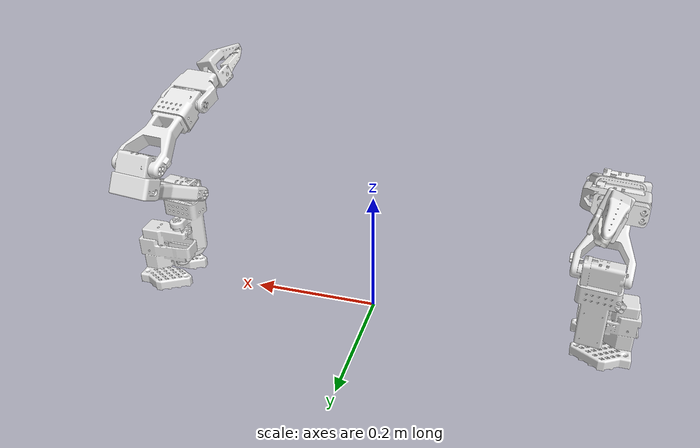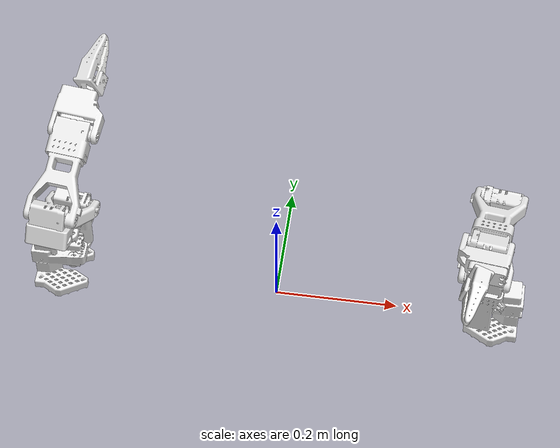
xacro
<?xml version="1.0"?>
<robot xmlns:xacro="http://www.ros.org/wiki/xacro" name="dual_so101_assembly">
    <xacro:arg name="initial_positions_file" default="initial_positions.yaml" />

    <!-- Import dual_so101_assembly urdf file -->
    <xacro:include filename="$(find so101_description)/urdf/dual_so101.urdf.xacro" />

    <!-- Import control_xacro -->
    <xacro:include filename="dual_so101_assembly.ros2_control.xacro" />

    <xacro:dual_so101_assembly_ros2_control name="FakeSystem" initial_positions_file="$(arg initial_positions_file)"/>

</robot>

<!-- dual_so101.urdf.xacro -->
<robot xmlns:xacro="http://www.ros.org/wiki/xacro" name="dual_so101_assembly">

    <xacro:include filename="$(find so101_description)/urdf/so101_macro.urdf.xacro"/>
    <link name="world"/>

    <!-- Tay 1: Đặt cách tâm 0.4m về phía trước trục X, xoay ngược lại 180 độ quanh trục Z -->
    <xacro:so101_arm prefix="arm1_" parent="world">
        <origin xyz="0.4 0 0" rpy="0 0 4.7123"/>
    </xacro:so101_arm>

    <!-- Tay 2: Đặt cách tâm 0.4m về phía sau trục X, hướng giữ nguyên -->
    <xacro:so101_arm prefix="arm2_" parent="world">
        <origin xyz="-0.4 0 0" rpy="0 0 1.5707"/>
    </xacro:so101_arm>

    <!-- Khai báo Plugin gz_ros2_control để Gazebo biết đường đọc file config -->
    <gazebo>
        <plugin filename="libgz_ros2_control-system.so" name="gz_ros2_control::GazeboSimROS2ControlPlugin">
            <parameters>$(find so101_gazebo)/config/controllers.yaml</parameters>
        </plugin>
    </gazebo>

</robot>

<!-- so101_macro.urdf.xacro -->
<robot xmlns:xacro="http://www.ros.org/wiki/xacro">

    <xacro:macro name="so101_arm" params="prefix parent *origin">

        <link name="${prefix}root" />

        <link name="${prefix}base_link">
            <inertial>
                <mass value="0.234577" />
                <origin xyz="-4.17088e-05 0.0326872 0.0322969" rpy="0 -0 0" />
                <inertia ixx="0.000310491" ixy="2.6781e-07" ixz="-6.0248e-07" iyy="0.000247507" iyz="2.2189e-05" izz="0.000303594" />
            </inertial>
            <visual>
                <origin xyz="0 -0.0704 0.016" rpy="0 -0 0" />
                <geometry>
                    <mesh filename="package://so101_description/meshes/so101/Base_Link.stl" scale="1 1 1" />
                </geometry>
                <material name="0.917647_0.917647_0.917647_0.000000_0.000000">
                    <color rgba="0.917647 0.917647 0.917647 1" />
                </material>
            </visual>
            <collision>
                <origin xyz="0 -0.0704 0.016" rpy="0 -0 0" />
                <geometry>
                    <mesh filename="package://so101_description/meshes/so101/Base_Link_Collision.stl" scale="1 1 1" />
                </geometry>
            </collision>
        </link>

        <link name="${prefix}link_2">
            <inertial>
                <mass value="0.17508" />
                <origin xyz="0.031067 0.0676521 0.00358282" rpy="0 1.44874 0" />
                <inertia ixx="0.000304182" ixy="3.31896e-06" ixz="2.0908e-06" iyy="7.07247e-05" iyz="8.49215e-07" izz="0.000293165" />
            </inertial>
            <visual>
                <origin xyz="-0.043226 -0.1014 -0.00530226" rpy="0 1.44874 0" />
                <geometry>
                    <mesh filename="package://so101_description/meshes/so101/Link_2.stl" scale="1 1 1" />
                </geometry>
                <material name="0.917647_0.917647_0.917647_0.000000_0.000000">
                    <color rgba="0.917647 0.917647 0.917647 1" />
                </material>
            </visual>
            <collision>
                <origin xyz="-0.043226 -0.1014 -0.00530226" rpy="0 1.44874 0" />
                <geometry>
                    <mesh filename="package://so101_description/meshes/so101/Link_2_Collision.stl" scale="1 1 1" />
                </geometry>
            </collision>
        </link>

        <link name="${prefix}link_3">
            <inertial>
                <mass value="0.218076" />
                <origin xyz="-0.032577 0.0512814 -0.0791874" rpy="-1.07854 -3.62462e-16 -2.48169e-16" />
                <inertia ixx="0.000438118" ixy="-2.91992e-06" ixz="2.48775e-06" iyy="0.000367616" iyz="0.000166116" izz="0.000286676" />
            </inertial>
            <visual>
                <origin xyz="-0.0319 -0.168646 0.157892" rpy="-1.07854 -3.62462e-16 -2.48169e-16" />
                <geometry>
                    <mesh filename="package://so101_description/meshes/so101/Link_3.stl" scale="1 1 1" />
                </geometry>
                <material name="0.917647_0.917647_0.917647_0.000000_0.000000">
                    <color rgba="0.917647 0.917647 0.917647 1" />
                </material>
            </visual>
            <collision>
                <origin xyz="-0.0319 -0.168646 0.157892" rpy="-1.07854 -3.62462e-16 -2.48169e-16" />
                <geometry>
                    <mesh filename="package://so101_description/meshes/so101/Link_3_Collision.stl" scale="1 1 1" />
                </geometry>
            </collision>
        </link>

        <link name="${prefix}link_4">
            <inertial>
                <mass value="0.188835" />
                <origin xyz="-0.0321198 -0.0547678 0.0660047" rpy="0.657991 -2.05616e-16 1.93952e-16" />
                <inertia ixx="0.000336984" ixy="4.36303e-06" ixz="-3.9803e-06" iyy="0.000280877" iyz="0.000149131" izz="0.000239713" />
            </inertial>
            <visual>
                <origin xyz="-0.03185 -0.20766 -0.298702" rpy="0.657991 -2.05616e-16 1.93952e-16" />
                <geometry>
                    <mesh filename="package://so101_description/meshes/so101/Link_4.stl" scale="1 1 1" />
                </geometry>
                <material name="0.917647_0.917647_0.917647_0.000000_0.000000">
                    <color rgba="0.917647 0.917647 0.917647 1" />
                </material>
            </visual>
            <collision>
                <origin xyz="-0.03185 -0.20766 -0.298702" rpy="0.657991 -2.05616e-16 1.93952e-16" />
                <geometry>
                    <mesh filename="package://so101_description/meshes/so101/Link_4_Collision.stl" scale="1 1 1" />
                </geometry>
            </collision>
        </link>

        <link name="${prefix}link_5">
            <inertial>
                <mass value="0.0644315" />
                <origin xyz="-0.0291244 -0.00699877 0.0370222" rpy="-1.3827 -8.37456e-17 6.93084e-17" />
                <inertia ixx="3.39542e-05" ixy="9.07343e-07" ixz="-5.29264e-06" iyy="7.61695e-05" iyz="4.61888e-06" izz="5.32817e-05" />
            </inertial>
            <visual>
                <origin xyz="-0.0319 -0.309133 0.289216" rpy="-1.3827 -8.37456e-17 6.93084e-17" />
                <geometry>
                    <mesh filename="package://so101_description/meshes/so101/Link_5.stl" scale="1 1 1" />
                </geometry>
                <material name="0.917647_0.917647_0.917647_0.000000_0.000000">
                    <color rgba="0.917647 0.917647 0.917647 1" />
                </material>
            </visual>
            <collision>
                <origin xyz="-0.0319 -0.309133 0.289216" rpy="-1.3827 -8.37456e-17 6.93084e-17" />
                <geometry>
                    <mesh filename="package://so101_description/meshes/so101/Link_5_Collision.stl" scale="1 1 1" />
                </geometry>
            </collision>
        </link>

        <link name="${prefix}mate_connector_1">
            <inertial>
                <mass value="1e-09" />
                <origin xyz="0 0 0" rpy="0 -0 0" />
                <inertia ixx="4e-14" ixy="0" ixz="0" iyy="4e-14" iyz="0" izz="4e-14" />
            </inertial>
        </link>

        <link name="${prefix}mate_connector_2">
            <inertial>
                <mass value="1e-09" />
                <origin xyz="0 0 0" rpy="0 -0 0" />
                <inertia ixx="4e-14" ixy="0" ixz="0" iyy="4e-14" iyz="0" izz="4e-14" />
            </inertial>
        </link>

        <link name="${prefix}moving_jaw_so101_v1">
            <inertial>
                <mass value="0.0073316" />
                <origin xyz="-0.00182785 -0.0358349 0.014666" rpy="0 -0 0" />
                <inertia ixx="2.97473e-06" ixy="-2.46615e-07" ixz="2.00849e-08" iyy="3.61206e-07" iyz="3.27943e-07" izz="2.9039e-06" />
            </inertial>
            <visual>
                <origin xyz="-0.0120576 -0.241611 -0.2334" rpy="0 -0 0" />
                <geometry>
                    <mesh filename="package://so101_description/meshes/so101/Moving_Jaw_SO101_v1.stl" scale="1 1 1" />
                </geometry>
                <material name="0.964706_0.964706_0.952941_0.000000_0.000000">
                    <color rgba="0.964706 0.964706 0.952941 1" />
                </material>
            </visual>
            <collision>
                <origin xyz="-0.0120576 -0.241611 -0.2334" rpy="0 -0 0" />
                <geometry>
                    <mesh filename="package://so101_description/meshes/so101/Moving_Jaw_SO101_v1.stl" scale="1 1 1" />
                </geometry>
            </collision>
        </link>

        <link name="${prefix}wrist_roll_follower_so101_v1">
            <inertial>
                <mass value="0.0524784" />
                <origin xyz="0.00214216 -0.0327057 0.00765457" rpy="3.14159 1.29034 3.14159" />
                <inertia ixx="3.97676e-05" ixy="1.13139e-06" ixz="-2.01004e-06" iyy="1.33352e-05" iyz="3.64793e-06" izz="3.46534e-05" />
            </inertial>
            <visual>
                <origin xyz="-0.23989 -0.26822 0.0689428" rpy="3.14159 1.29034 3.14159" />
                <geometry>
                    <mesh filename="package://so101_description/meshes/so101/Wrist_Roll_Follower_SO101_v1.stl" scale="1 1 1" />
                </geometry>
                <material name="0.917647_0.917647_0.917647_0.000000_0.000000">
                    <color rgba="0.917647 0.917647 0.917647 1" />
                </material>
            </visual>
            <collision>
                <origin xyz="-0.23989 -0.26822 0.0689428" rpy="3.14159 1.29034 3.14159" />
                <geometry>
                    <mesh filename="package://so101_description/meshes/so101/Wrist_Roll_Follower_SO101_v1.stl" scale="1 1 1" />
                </geometry>
            </collision>
        </link>

        <!-- Đã sửa số nguyên 1 thành 1.0 -->
        <joint name="${prefix}end_effector" type="revolute">
            <origin xyz="-0.018946 -0.0266092 -0.00724663" rpy="3.14159 1.29034 3.14159" />
            <axis xyz="0 3.88578e-16 -1" />
            <parent link="${prefix}wrist_roll_follower_so101_v1" />
            <child link="${prefix}moving_jaw_so101_v1" />
            <limit effort="1.0" velocity="1.0" lower="-1.0472" upper="1.06581e-14" />
        </joint>

        <joint name="${prefix}base_mount" type="fixed">
            <xacro:insert_block name="origin" />
            <parent link="${parent}" />
            <child link="${prefix}root" />
        </joint>

        <joint name="${prefix}fastened_1" type="fixed">
            <origin xyz="0 0 0" rpy="1.5708 0 0" />
            <parent link="${prefix}root" />
            <child link="${prefix}base_link" />
        </joint>

        <!-- Đã sửa số nguyên 1 thành 1.0 -->
        <joint name="${prefix}joint_1" type="revolute">
            <origin xyz="-6.93889e-18 0.031 0.05955" rpy="-1.82999e-16 -3.33067e-16 -4.74682e-17" />
            <axis xyz="0 1 0" />
            <parent link="${prefix}base_link" />
            <child link="${prefix}link_2" />
            <limit effort="1.0" velocity="1.0" lower="-3.19407" upper="0.296587" />
        </joint>

        <!-- Đã sửa số nguyên 1 thành 1.0 -->
        <joint name="${prefix}joint_2" type="revolute">
            <origin xyz="0.0341073 0.11745 -0.0279554" rpy="-8.40441e-14 1.44874 -8.04183e-14" />
            <axis xyz="-1 -1.78756e-16 -3.88578e-16" />
            <parent link="${prefix}link_2" />
            <child link="${prefix}link_3" />
            <limit effort="1.0" velocity="1.0" lower="-2.64934" upper="0.492256" />
        </joint>

        <!-- Đã sửa số nguyên 1 thành 1.0 -->
        <joint name="${prefix}joint_3" type="revolute">
            <origin xyz="-5e-05 0.0917043 -0.0962012" rpy="-1.07854 1.75227e-15 4.93588e-15" />
            <axis xyz="-1 2.04157e-16 -3.8686e-16" />
            <parent link="${prefix}link_3" />
            <child link="${prefix}link_4" />
            <limit effort="1.0" velocity="1.0" lower="-0.738273" upper="2.05425" />
        </joint>

        <!-- Đã sửa số nguyên 1 thành 1.0 -->
        <joint name="${prefix}joint_4" type="revolute">
            <origin xyz="-5e-05 -0.0897624 0.107881" rpy="0.657991 3.13488e-15 -1.60269e-15" />
            <axis xyz="-1 -8.52493e-17 0" />
            <parent link="${prefix}link_4" />
            <child link="${prefix}link_5" />
            <limit effort="1.0" velocity="1.0" lower="-1.3827" upper="1.40983" />
        </joint>

        <joint name="${prefix}joint_5" type="continuous">
            <origin xyz="-0.03205 -0.0137812 0.0724001" rpy="-1.3827 1.9657e-14 -4.08562e-15" />
            <axis xyz="1.78756e-16 1 3.88578e-16" />
            <parent link="${prefix}link_5" />
            <child link="${prefix}wrist_roll_follower_so101_v1" />
        </joint>

        <joint name="${prefix}mate_connector_1_joint" type="fixed">
            <origin xyz="0 0 0" rpy="-3.14159 5.55112e-17 -6.93889e-18" />
            <axis xyz="0 0 1" />
            <parent link="${prefix}moving_jaw_so101_v1" />
            <child link="${prefix}mate_connector_1" />
        </joint>

        <joint name="${prefix}mate_connector_2_joint" type="fixed">
            <origin xyz="-0.018946 -0.0266092 -0.00724663" rpy="-1.81334e-15 1.29034 3.14159" />
            <axis xyz="0 0 1" />
            <parent link="${prefix}wrist_roll_follower_so101_v1" />
            <child link="${prefix}mate_connector_2" />
        </joint>

        <ros2_control name="${prefix}System" type="system">
            <hardware>
                <plugin>gz_ros2_control/GazeboSimSystem</plugin>
            </hardware>
            <joint name="${prefix}joint_1">
                <command_interface name="position"/>
                <state_interface name="position">
                    <param name="initial_value">0.0</param>
                </state_interface>
                <state_interface name="velocity"/>
            </joint>
            <joint name="${prefix}joint_2">
                <command_interface name="position"/>
                <state_interface name="position">
                    <param name="initial_value">0.0</param>
                </state_interface>
                <state_interface name="velocity"/>
            </joint>
            <joint name="${prefix}joint_3">
                <command_interface name="position"/>
                <state_interface name="position">
                    <param name="initial_value">0.0</param>
                </state_interface>
                <state_interface name="velocity"/>
            </joint>
            <joint name="${prefix}joint_4">
                <command_interface name="position"/>
                <state_interface name="position">
                    <param name="initial_value">0.0</param>
                </state_interface>
                <state_interface name="velocity"/>
            </joint>
            <joint name="${prefix}joint_5">
                <command_interface name="position"/>
                <state_interface name="position">
                    <param name="initial_value">0.0</param>
                </state_interface>
                <state_interface name="velocity"/>
            </joint>
            <joint name="${prefix}end_effector">
                <command_interface name="position"/>
                <state_interface name="position">
                    <param name="initial_value">0.0</param>
                </state_interface>
                <state_interface name="velocity"/>
            </joint>
        </ros2_control>

    </xacro:macro>
</robot>
